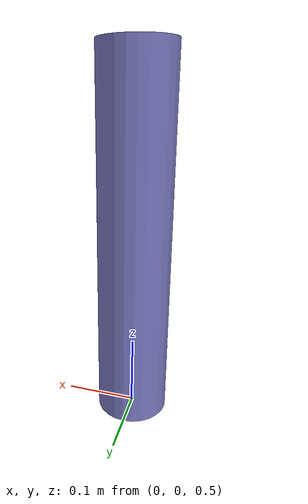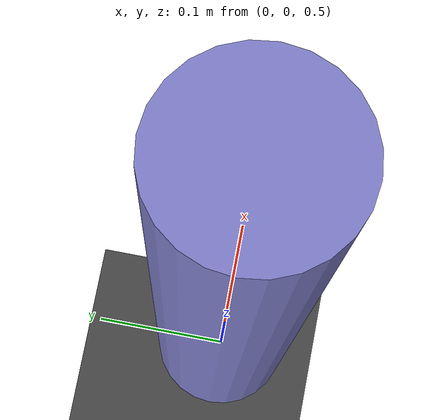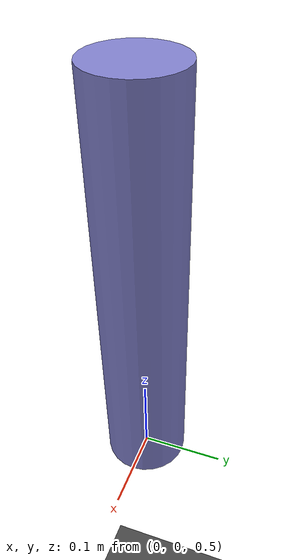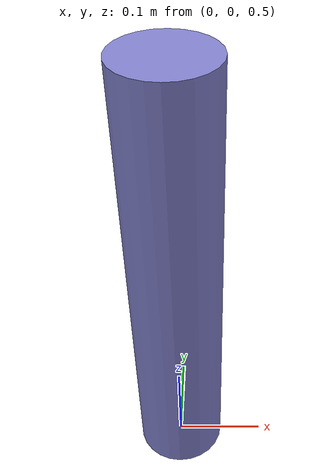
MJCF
<!-- a basic model allowing to test on the fly modification of the inertial properties via mujoco-py
see src_py/uncertainty/swing.py -->
<mujoco>
    <asset>
        <texture type="skybox" builtin="gradient" rgb1=".6 .6 .9" rgb2="0 0 0" width="512" height="512"/>

        <texture name="texplane" type="2d" builtin="checker" rgb1=".25 .25 .25" rgb2=".3 .3 .3" width="512" height="512" mark="cross" markrgb=".8 .8 .8"/>
        <material name="matplane" reflectance=".3" texture="texplane" texrepeat="1 1" texuniform="true"/>
    </asset>

    <worldbody>
        <geom name="floor" pos="0 0 0" size="0 0 1" type="plane" material="matplane"/>
        <light directional="true" diffuse=".8 .8 .8" specular=".2 .2 .2" pos="0 0 5" dir="0 0 -1"/>

        <body name="pendulum">
            <geom type="cylinder" fromto="0 0 .5 0 0 1" size=".05" rgba="0.5 0.5 0.8 1"/>
            <inertial pos="0 0 .75" mass="10" diaginertia="1 2 1"/>

            <joint name="rot_axis" type="hinge" pos="0 0 1" axis="0 1 0" damping="1" limited="true" range="-90 90"/>
        </body>
    </worldbody>
</mujoco>
